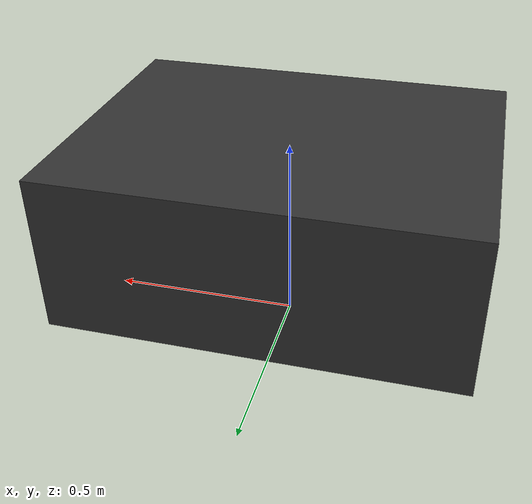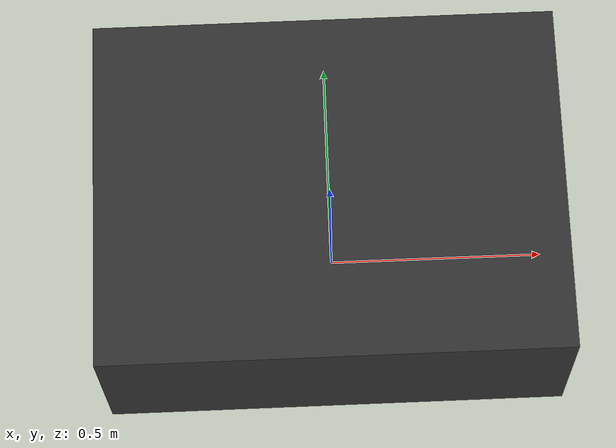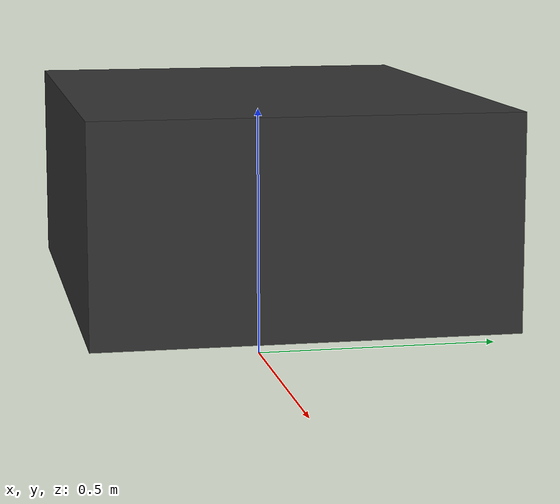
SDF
<?xml version="1.0" ?>
<sdf version="1.9">
  <model name="bunker">
    <pose>0 0 0.14 0 0 0</pose>

    <!-- Real size target from user spec: L=1.023m, W=0.778m, H=0.400m -->
    <link name="base_link">
      <inertial>
        <!-- From spec: weight about 130 kg -->
        <mass>130.0</mass>
        <inertia>
          <!-- Box approximation inertia for 1.023 x 0.778 x 0.4 m, 130 kg -->
          <ixx>8.29</ixx>
          <iyy>13.07</iyy>
          <izz>17.89</izz>
          <ixy>0.0</ixy>
          <ixz>0.0</ixz>
          <iyz>0.0</iyz>
        </inertia>
      </inertial>

      <collision name="chassis_collision">
        <pose>0 0 0.20 0 0 0</pose>
        <geometry>
          <box>
            <size>1.023 0.778 0.40</size>
          </box>
        </geometry>
        <surface>
          <friction>
            <ode>
              <mu>1.2</mu>
              <mu2>1.2</mu2>
            </ode>
          </friction>
        </surface>
      </collision>

      <visual name="chassis_visual">
        <pose>0 0 0.20 0 0 0</pose>
        <geometry>
          <box>
            <size>1.023 0.778 0.40</size>
          </box>
        </geometry>
        <material>
          <ambient>0.15 0.15 0.15 1</ambient>
          <diffuse>0.20 0.20 0.20 1</diffuse>
          <specular>0.05 0.05 0.05 1</specular>
        </material>
      </visual>

      <!-- Track visuals (approximate) -->
      <visual name="left_track_visual">
        <pose>0 0.309 0.14 0 0 0</pose>
        <geometry>
          <box>
            <!-- From spec: track width 150 mm -->
            <size>1.00 0.15 0.18</size>
          </box>
        </geometry>
        <material>
          <ambient>0.05 0.05 0.05 1</ambient>
          <diffuse>0.08 0.08 0.08 1</diffuse>
        </material>
      </visual>

      <visual name="right_track_visual">
        <pose>0 -0.309 0.14 0 0 0</pose>
        <geometry>
          <box>
            <size>1.00 0.15 0.18</size>
          </box>
        </geometry>
        <material>
          <ambient>0.05 0.05 0.05 1</ambient>
          <diffuse>0.08 0.08 0.08 1</diffuse>
        </material>
      </visual>
    </link>

    <link name="left_wheel">
      <pose>0 0.309 0.14 1.5708 0 0</pose>
      <inertial>
        <mass>2.0</mass>
        <inertia>
          <ixx>0.02</ixx>
          <iyy>0.02</iyy>
          <izz>0.02</izz>
          <ixy>0</ixy>
          <ixz>0</ixz>
          <iyz>0</iyz>
        </inertia>
      </inertial>
      <collision name="left_wheel_collision">
        <geometry>
          <cylinder>
            <radius>0.14</radius>
            <length>0.05</length>
          </cylinder>
        </geometry>
      </collision>
      <visual name="left_wheel_visual">
        <geometry>
          <cylinder>
            <radius>0.14</radius>
            <length>0.05</length>
          </cylinder>
        </geometry>
        <material>
          <ambient>0.02 0.02 0.02 1</ambient>
          <diffuse>0.03 0.03 0.03 1</diffuse>
        </material>
      </visual>
    </link>

    <link name="right_wheel">
      <pose>0 -0.309 0.14 1.5708 0 0</pose>
      <inertial>
        <mass>2.0</mass>
        <inertia>
          <ixx>0.02</ixx>
          <iyy>0.02</iyy>
          <izz>0.02</izz>
          <ixy>0</ixy>
          <ixz>0</ixz>
          <iyz>0</iyz>
        </inertia>
      </inertial>
      <collision name="right_wheel_collision">
        <geometry>
          <cylinder>
            <radius>0.14</radius>
            <length>0.05</length>
          </cylinder>
        </geometry>
      </collision>
      <visual name="right_wheel_visual">
        <geometry>
          <cylinder>
            <radius>0.14</radius>
            <length>0.05</length>
          </cylinder>
        </geometry>
        <material>
          <ambient>0.02 0.02 0.02 1</ambient>
          <diffuse>0.03 0.03 0.03 1</diffuse>
        </material>
      </visual>
    </link>

    <joint name="left_wheel_joint" type="revolute">
      <parent>base_link</parent>
      <child>left_wheel</child>
      <axis>
        <xyz>0 1 0</xyz>
      </axis>
    </joint>

    <joint name="right_wheel_joint" type="revolute">
      <parent>base_link</parent>
      <child>right_wheel</child>
      <axis>
        <xyz>0 1 0</xyz>
      </axis>
    </joint>

    <plugin
      filename="gz-sim-diff-drive-system"
      name="gz::sim::systems::DiffDrive">
      <left_joint>left_wheel_joint</left_joint>
      <right_joint>right_wheel_joint</right_joint>
      <!-- Approx from total width 0.778 and track width 0.150 -->
      <wheel_separation>0.628</wheel_separation>
      <!-- Tuned to better clear 170 mm obstacle class in spec -->
      <wheel_radius>0.17</wheel_radius>
      <topic>/cmd_vel</topic>
      <odom_topic>/odom</odom_topic>
      <tf_topic>/tf</tf_topic>
      <frame_id>odom</frame_id>
      <child_frame_id>base_link</child_frame_id>
      <odom_publish_frequency>50</odom_publish_frequency>
      <!-- From spec: speed up to 1.5 m/s -->
      <max_linear_velocity>1.5</max_linear_velocity>
      <max_angular_velocity>2.5</max_angular_velocity>
      <min_linear_velocity>-1.0</min_linear_velocity>
      <min_angular_velocity>-2.5</min_angular_velocity>
    </plugin>
  </model>
</sdf>
